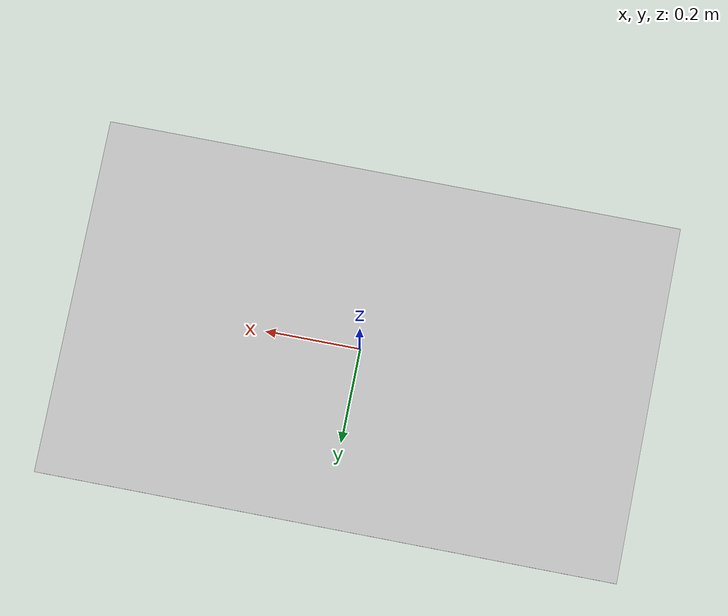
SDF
<?xml version='1.0'?>
<sdf version='1.7'>
    <model name='Floor Mat'>
        <link name='link'>
            <visual name='visual'>
                <geometry>
                    <plane>
                        <normal>0 0 1</normal>
                        <size>1.2192 0.762</size>
                    </plane>
                </geometry>
                <material>
                    <script>
                        <uri>model://floor_mat/materials/scripts/</uri>
                        <uri>model://floor_mat/materials/textures/</uri>
                        <name>FloorMat/Image</name>
                    </script>
                </material>
            </visual>
        </link>
    </model>
</sdf>
